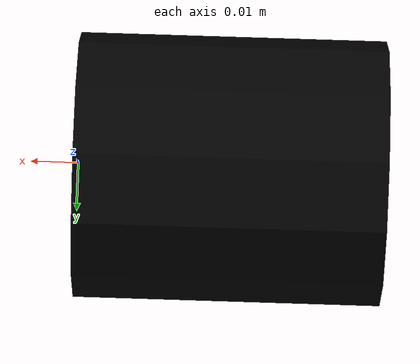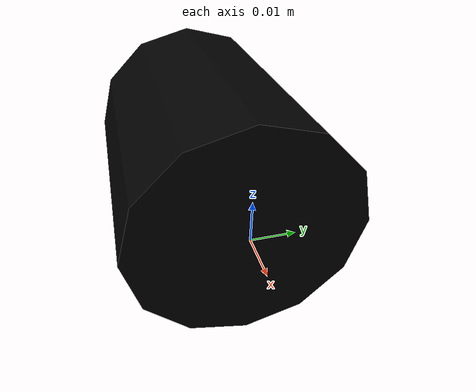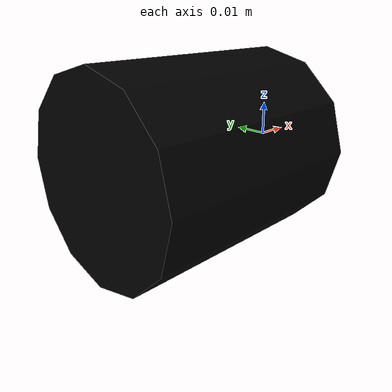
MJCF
<mujoco model="head_link2">
  <default>
    <default class="visual">
      <geom group="2" type="mesh" contype="0" conaffinity="0"/>
    </default>
    <default class="collision">
      <geom group="3" type="mesh"/>
    </default>
  </default>
  <asset>
    <material name="material_head_link2_0" specular="0.20000000000000004" shininess="1.0" rgba="0.00000000 0.00000000 0.00000000 1.0"/>
    <mesh file="head_link2.obj"/>
  </asset>
  <worldbody>
    <body name="head_link2">
      <geom material="material_head_link2_0" mesh="head_link2" class="visual"/>
      <geom mesh="head_link2" class="collision"/>
    </body>
  </worldbody>
</mujoco>
